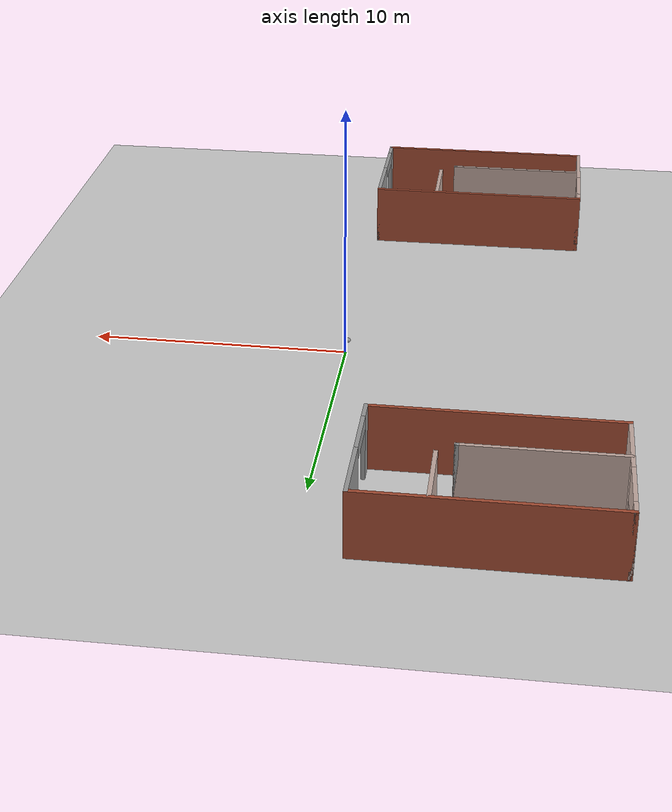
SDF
<sdf version="1.6">
 <world name="default">
  <plugin name="hello" filename="libmessage.so"/>
  <light name="sun" type="directional">
   <pose>0 0 10 0 -0 0</pose>
   <diffuse>0.8 0.8 0.8 1</diffuse>
   <specular>0.2 0.2 0.2 1</specular>
   <attenuation>
    <range>1000</range>
    <constant>0.9</constant>
    <linear>0.01</linear>
    <quadratic>0.001</quadratic>
   </attenuation>
   <direction>-0.5 0.1 -0.9</direction>
  </light>
  <model name="ground_plane">
   <static>1</static>
   <link name="link">
    <collision name="collision">
     <geometry><plane><normal>0 0 1</normal><size>100 100</size></plane></geometry>
     <surface>
      <contact><collide_bitmask>65535</collide_bitmask></contact>
      <friction><ode><mu>100</mu><mu2>50</mu2></ode></friction>
     </surface>
    </collision>
    <visual name="visual">
     <cast_shadows>0</cast_shadows>
     <geometry><plane><normal>0 0 1</normal><size>100 100</size></plane></geometry>
     <material>
      <script><uri>file://media/materials/scripts/gazebo.material</uri><name>Gazebo/Grey</name></script>
     </material>
    </visual>
   </link>
  </model>
  <gravity>0 0 -9.8</gravity>
  <magnetic_field>6e-06 2.3e-05 -4.2e-05</magnetic_field>
  <atmosphere type="adiabatic"/>
  <physics name="default_physics" default="0" type="ode">
   <max_step_size>0.001</max_step_size>
   <real_time_factor>1</real_time_factor>
   <real_time_update_rate>1000</real_time_update_rate>
  </physics>
  <scene><ambient>0.4 0.4 0.4 1</ambient><background>0.7 0.7 0.7 1</background><shadows>1</shadows></scene>
  <spherical_coordinates>
   <surface_model>EARTH_WGS84</surface_model>
   <latitude_deg>0</latitude_deg>
   <longitude_deg>0</longitude_deg>
   <elevation>0</elevation>
   <heading_deg>0</heading_deg>
  </spherical_coordinates>
  <model name="room2">
   <pose>-4.515 -13.785 0 0 -0 0</pose>
   <link name="Wall_21">
    <collision name="Wall_21_Collision">
     <geometry><box><size>9 0.15 2.5</size></box></geometry>
     <pose>0 0 1.25 0 -0 0</pose>
    </collision>
    <visual name="Wall_21_Visual">
     <pose>0 0 1.25 0 -0 0</pose>
     <geometry><box><size>9 0.15 2.5</size></box></geometry>
     <material>
      <script><uri>file://media/materials/scripts/gazebo.material</uri><name>Gazebo/Bricks</name></script>
      <ambient>1 1 1 1</ambient>
     </material>
     <meta><layer>0</layer></meta>
    </visual>
    <pose>0 2.675 0 0 -0 0</pose>
   </link>
   <link name="Wall_22">
    <pose>4.425 0 0 0 0 -1.5708</pose>
    <visual name="Wall_22_Visual_0">
     <pose>-1.4175 0 1.25 0 -0 0</pose>
     <geometry><box><size>2.665 0.15 2.5</size></box></geometry>
     <material>
      <script><uri>file://media/materials/scripts/gazebo.material</uri><name>Gazebo/Grey</name></script>
      <ambient>1 1 1 1</ambient>
     </material>
     <meta><layer>0</layer></meta>
    </visual>
    <collision name="Wall_22_Collision_0">
     <geometry><box><size>2.665 0.15 2.5</size></box></geometry>
     <pose>-1.4175 0 1.25 0 -0 0</pose>
    </collision>
    <visual name="Wall_22_Visual_1">
     <pose>2.3325 0 1.25 0 -0 0</pose>
     <geometry><box><size>0.835 0.15 2.5</size></box></geometry>
     <material>
      <script><uri>file://media/materials/scripts/gazebo.material</uri><name>Gazebo/Grey</name></script>
      <ambient>1 1 1 1</ambient>
     </material>
     <meta><layer>0</layer></meta>
    </visual>
    <collision name="Wall_22_Collision_1">
     <geometry><box><size>0.835 0.15 2.5</size></box></geometry>
     <pose>2.3325 0 1.25 0 -0 0</pose>
    </collision>
    <visual name="Wall_22_Visual_2">
     <pose>0.915 0 2.25 0 -0 0</pose>
     <geometry><box><size>2 0.15 0.5</size></box></geometry>
     <material>
      <script><uri>file://media/materials/scripts/gazebo.material</uri><name>Gazebo/Grey</name></script>
      <ambient>1 1 1 1</ambient>
     </material>
     <meta><layer>0</layer></meta>
    </visual>
    <collision name="Wall_22_Collision_2">
     <geometry><box><size>2 0.15 0.5</size></box></geometry>
     <pose>0.915 0 2.25 0 -0 0</pose>
    </collision>
   </link>
   <link name="Wall_23">
    <collision name="Wall_23_Collision">
     <geometry><box><size>9 0.15 2.5</size></box></geometry>
     <pose>0 0 1.25 0 -0 0</pose>
    </collision>
    <visual name="Wall_23_Visual">
     <pose>0 0 1.25 0 -0 0</pose>
     <geometry><box><size>9 0.15 2.5</size></box></geometry>
     <material>
      <script><uri>file://media/materials/scripts/gazebo.material</uri><name>Gazebo/Bricks</name></script>
      <ambient>1 1 1 1</ambient>
     </material>
     <meta><layer>0</layer></meta>
    </visual>
    <pose>0 -2.675 0 0 -0 3.14159</pose>
   </link>
   <link name="Wall_24">
    <pose>-4.425 0 0 0 -0 1.5708</pose>
    <visual name="Wall_24_Visual_0">
     <pose>-1.3225 0 1.25 0 -0 0</pose>
     <geometry><box><size>2.855 0.15 2.5</size></box></geometry>
     <material>
      <script><uri>file://media/materials/scripts/gazebo.material</uri><name>Gazebo/Grey</name></script>
      <ambient>0.760784 0.662745 0.627451 1</ambient>
     </material>
     <meta><layer>0</layer></meta>
    </visual>
    <collision name="Wall_24_Collision_0">
     <geometry><box><size>2.855 0.15 2.5</size></box></geometry>
     <pose>-1.3225 0 1.25 0 -0 0</pose>
    </collision>
    <visual name="Wall_24_Visual_1">
     <pose>1.4275 0 0.25 0 -0 0</pose>
     <geometry><box><size>2.645 0.15 0.5</size></box></geometry>
     <material>
      <script><uri>file://media/materials/scripts/gazebo.material</uri><name>Gazebo/Grey</name></script>
      <ambient>0.760784 0.662745 0.627451 1</ambient>
     </material>
     <meta><layer>0</layer></meta>
    </visual>
    <collision name="Wall_24_Collision_1">
     <geometry><box><size>2.645 0.15 0.5</size></box></geometry>
     <pose>1.4275 0 0.25 0 -0 0</pose>
    </collision>
    <visual name="Wall_24_Visual_2">
     <pose>2.4275 0 1.5 0 -0 0</pose>
     <geometry><box><size>0.645 0.15 2</size></box></geometry>
     <material>
      <script><uri>file://media/materials/scripts/gazebo.material</uri><name>Gazebo/Grey</name></script>
      <ambient>0.760784 0.662745 0.627451 1</ambient>
     </material>
     <meta><layer>0</layer></meta>
    </visual>
    <collision name="Wall_24_Collision_2">
     <geometry><box><size>0.645 0.15 2</size></box></geometry>
     <pose>2.4275 0 1.5 0 -0 0</pose>
    </collision>
    <visual name="Wall_24_Visual_3">
     <pose>1.105 0 1.9 0 -0 0</pose>
     <geometry><box><size>2 0.15 1.2</size></box></geometry>
     <material>
      <script><uri>file://media/materials/scripts/gazebo.material</uri><name>Gazebo/Grey</name></script>
      <ambient>0.760784 0.662745 0.627451 1</ambient>
     </material>
     <meta><layer>0</layer></meta>
    </visual>
    <collision name="Wall_24_Collision_3">
     <geometry><box><size>2 0.15 1.2</size></box></geometry>
     <pose>1.105 0 1.9 0 -0 0</pose>
    </collision>
   </link>
   <link name="Wall_26">
    <collision name="Wall_26_Collision">
     <geometry><box><size>2.75 0.15 2.5</size></box></geometry>
     <pose>0 0 1.25 0 -0 0</pose>
    </collision>
    <visual name="Wall_26_Visual">
     <pose>0 0 1.25 0 -0 0</pose>
     <geometry><box><size>2.75 0.15 2.5</size></box></geometry>
     <material>
      <script><uri>file://media/materials/scripts/gazebo.material</uri><name>Gazebo/Grey</name></script>
      <ambient>0.760784 0.662745 0.627451 1</ambient>
     </material>
     <meta><layer>0</layer></meta>
    </visual>
    <pose>1.855 1.305 0 0 0 -1.5708</pose>
   </link>
   <link name="Wall_28">
    <collision name="Wall_28_Collision">
     <geometry><box><size>5.75 0.15 2.5</size></box></geometry>
     <pose>0 0 1.25 0 -0 0</pose>
    </collision>
    <visual name="Wall_28_Visual">
     <pose>0 0 1.25 0 -0 0</pose>
     <geometry><box><size>5.75 0.15 2.5</size></box></geometry>
     <material>
      <script><uri>file://media/materials/scripts/gazebo.material</uri><name>Gazebo/Grey</name></script>
      <ambient>0.760784 0.662745 0.627451 1</ambient>
     </material>
     <meta><layer>0</layer></meta>
    </visual>
    <pose>-1.585 -0.545 0 0 -0 0</pose>
   </link>
   <link name="Wall_29">
    <collision name="Wall_29_Collision">
     <geometry><box><size>0.15 0.15 2.5</size></box></geometry>
     <pose>0 0 1.25 0 -0 0</pose>
    </collision>
    <visual name="Wall_29_Visual">
     <pose>0 0 1.25 0 -0 0</pose>
     <geometry><box><size>0.15 0.15 2.5</size></box></geometry>
     <material>
      <script><uri>file://media/materials/scripts/gazebo.material</uri><name>Gazebo/Grey</name></script>
      <ambient>1 1 1 1</ambient>
     </material>
     <meta><layer>0</layer></meta>
    </visual>
    <pose>1.215 -0.545 0 0 -0 0</pose>
   </link>
   <static>1</static>
  </model>
  <model name="room2_0">
   <pose>-6.20009 11.0329 0 0 -0 0</pose>
   <link name="Wall_21">
    <collision name="Wall_21_Collision">
     <geometry><box><size>9 0.15 2.5</size></box></geometry>
     <pose>0 0 1.25 0 -0 0</pose>
    </collision>
    <visual name="Wall_21_Visual">
     <pose>0 0 1.25 0 -0 0</pose>
     <geometry><box><size>9 0.15 2.5</size></box></geometry>
     <material>
      <script><uri>file://media/materials/scripts/gazebo.material</uri><name>Gazebo/Bricks</name></script>
      <ambient>1 1 1 1</ambient>
     </material>
     <meta><layer>0</layer></meta>
    </visual>
    <pose>0 2.675 0 0 -0 0</pose>
   </link>
   <link name="Wall_22">
    <pose>4.425 0 0 0 0 -1.5708</pose>
    <visual name="Wall_22_Visual_0">
     <pose>-1.4175 0 1.25 0 -0 0</pose>
     <geometry><box><size>2.665 0.15 2.5</size></box></geometry>
     <material>
      <script><uri>file://media/materials/scripts/gazebo.material</uri><name>Gazebo/Grey</name></script>
      <ambient>1 1 1 1</ambient>
     </material>
     <meta><layer>0</layer></meta>
    </visual>
    <collision name="Wall_22_Collision_0">
     <geometry><box><size>2.665 0.15 2.5</size></box></geometry>
     <pose>-1.4175 0 1.25 0 -0 0</pose>
    </collision>
    <visual name="Wall_22_Visual_1">
     <pose>2.3325 0 1.25 0 -0 0</pose>
     <geometry><box><size>0.835 0.15 2.5</size></box></geometry>
     <material>
      <script><uri>file://media/materials/scripts/gazebo.material</uri><name>Gazebo/Grey</name></script>
      <ambient>1 1 1 1</ambient>
     </material>
     <meta><layer>0</layer></meta>
    </visual>
    <collision name="Wall_22_Collision_1">
     <geometry><box><size>0.835 0.15 2.5</size></box></geometry>
     <pose>2.3325 0 1.25 0 -0 0</pose>
    </collision>
    <visual name="Wall_22_Visual_2">
     <pose>0.915 0 2.25 0 -0 0</pose>
     <geometry><box><size>2 0.15 0.5</size></box></geometry>
     <material>
      <script><uri>file://media/materials/scripts/gazebo.material</uri><name>Gazebo/Grey</name></script>
      <ambient>1 1 1 1</ambient>
     </material>
     <meta><layer>0</layer></meta>
    </visual>
    <collision name="Wall_22_Collision_2">
     <geometry><box><size>2 0.15 0.5</size></box></geometry>
     <pose>0.915 0 2.25 0 -0 0</pose>
    </collision>
   </link>
   <link name="Wall_23">
    <collision name="Wall_23_Collision">
     <geometry><box><size>9 0.15 2.5</size></box></geometry>
     <pose>0 0 1.25 0 -0 0</pose>
    </collision>
    <visual name="Wall_23_Visual">
     <pose>0 0 1.25 0 -0 0</pose>
     <geometry><box><size>9 0.15 2.5</size></box></geometry>
     <material>
      <script><uri>file://media/materials/scripts/gazebo.material</uri><name>Gazebo/Bricks</name></script>
      <ambient>1 1 1 1</ambient>
     </material>
     <meta><layer>0</layer></meta>
    </visual>
    <pose>0 -2.675 0 0 -0 3.14159</pose>
   </link>
   <link name="Wall_24">
    <pose>-4.425 0 0 0 -0 1.5708</pose>
    <visual name="Wall_24_Visual_0">
     <pose>-1.3225 0 1.25 0 -0 0</pose>
     <geometry><box><size>2.855 0.15 2.5</size></box></geometry>
     <material>
      <script><uri>file://media/materials/scripts/gazebo.material</uri><name>Gazebo/Grey</name></script>
      <ambient>0.760784 0.662745 0.627451 1</ambient>
     </material>
     <meta><layer>0</layer></meta>
    </visual>
    <collision name="Wall_24_Collision_0">
     <geometry><box><size>2.855 0.15 2.5</size></box></geometry>
     <pose>-1.3225 0 1.25 0 -0 0</pose>
    </collision>
    <visual name="Wall_24_Visual_1">
     <pose>1.4275 0 0.25 0 -0 0</pose>
     <geometry><box><size>2.645 0.15 0.5</size></box></geometry>
     <material>
      <script><uri>file://media/materials/scripts/gazebo.material</uri><name>Gazebo/Grey</name></script>
      <ambient>0.760784 0.662745 0.627451 1</ambient>
     </material>
     <meta><layer>0</layer></meta>
    </visual>
    <collision name="Wall_24_Collision_1">
     <geometry><box><size>2.645 0.15 0.5</size></box></geometry>
     <pose>1.4275 0 0.25 0 -0 0</pose>
    </collision>
    <visual name="Wall_24_Visual_2">
     <pose>2.4275 0 1.5 0 -0 0</pose>
     <geometry><box><size>0.645 0.15 2</size></box></geometry>
     <material>
      <script><uri>file://media/materials/scripts/gazebo.material</uri><name>Gazebo/Grey</name></script>
      <ambient>0.760784 0.662745 0.627451 1</ambient>
     </material>
     <meta><layer>0</layer></meta>
    </visual>
    <collision name="Wall_24_Collision_2">
     <geometry><box><size>0.645 0.15 2</size></box></geometry>
     <pose>2.4275 0 1.5 0 -0 0</pose>
    </collision>
    <visual name="Wall_24_Visual_3">
     <pose>1.105 0 1.9 0 -0 0</pose>
     <geometry><box><size>2 0.15 1.2</size></box></geometry>
     <material>
      <script><uri>file://media/materials/scripts/gazebo.material</uri><name>Gazebo/Grey</name></script>
      <ambient>0.760784 0.662745 0.627451 1</ambient>
     </material>
     <meta><layer>0</layer></meta>
    </visual>
    <collision name="Wall_24_Collision_3">
     <geometry><box><size>2 0.15 1.2</size></box></geometry>
     <pose>1.105 0 1.9 0 -0 0</pose>
    </collision>
   </link>
   <link name="Wall_26">
    <collision name="Wall_26_Collision">
     <geometry><box><size>2.75 0.15 2.5</size></box></geometry>
     <pose>0 0 1.25 0 -0 0</pose>
    </collision>
    <visual name="Wall_26_Visual">
     <pose>0 0 1.25 0 -0 0</pose>
     <geometry><box><size>2.75 0.15 2.5</size></box></geometry>
     <material>
      <script><uri>file://media/materials/scripts/gazebo.material</uri><name>Gazebo/Grey</name></script>
      <ambient>0.760784 0.662745 0.627451 1</ambient>
     </material>
     <meta><layer>0</layer></meta>
    </visual>
    <pose>1.855 1.305 0 0 0 -1.5708</pose>
   </link>
   <link name="Wall_28">
    <collision name="Wall_28_Collision">
     <geometry><box><size>5.75 0.15 2.5</size></box></geometry>
     <pose>0 0 1.25 0 -0 0</pose>
    </collision>
    <visual name="Wall_28_Visual">
     <pose>0 0 1.25 0 -0 0</pose>
     <geometry><box><size>5.75 0.15 2.5</size></box></geometry>
     <material>
      <script><uri>file://media/materials/scripts/gazebo.material</uri><name>Gazebo/Grey</name></script>
      <ambient>0.760784 0.662745 0.627451 1</ambient>
     </material>
     <meta><layer>0</layer></meta>
    </visual>
    <pose>-1.585 -0.545 0 0 -0 0</pose>
   </link>
   <link name="Wall_29">
    <collision name="Wall_29_Collision">
     <geometry><box><size>0.15 0.15 2.5</size></box></geometry>
     <pose>0 0 1.25 0 -0 0</pose>
    </collision>
    <visual name="Wall_29_Visual">
     <pose>0 0 1.25 0 -0 0</pose>
     <geometry><box><size>0.15 0.15 2.5</size></box></geometry>
     <material>
      <script><uri>file://media/materials/scripts/gazebo.material</uri><name>Gazebo/Grey</name></script>
      <ambient>1 1 1 1</ambient>
     </material>
     <meta><layer>0</layer></meta>
    </visual>
    <pose>1.215 -0.545 0 0 -0 0</pose>
   </link>
   <static>1</static>
  </model>
  <model name="bookshelf">
   <static>1</static>
   <link name="link">
    <inertial><mass>1</mass></inertial>
    <collision name="back">
     <pose>0 0.005 0.6 0 -0 0</pose>
     <geometry><box><size>0.9 0.01 1.2</size></box></geometry>
    </collision>
    <visual name="visual1">
     <pose>0 0.005 0.6 0 -0 0</pose>
     <geometry><box><size>0.9 0.01 1.2</size></box></geometry>
     <material>
      <script><uri>file://media/materials/scripts/gazebo.material</uri><name>Gazebo/Wood</name></script>
     </material>
    </visual>
    <collision name="left_side">
     <pose>0.45 -0.195 0.6 0 -0 0</pose>
     <geometry><box><size>0.02 0.4 1.2</size></box></geometry>
    </collision>
    <visual name="visual2">
     <pose>0.45 -0.195 0.6 0 -0 0</pose>
     <geometry><box><size>0.02 0.4 1.2</size></box></geometry>
     <material>
      <script><uri>file://media/materials/scripts/gazebo.material</uri><name>Gazebo/Wood</name></script>
     </material>
    </visual>
    <collision name="right_side">
     <pose>-0.45 -0.195 0.6 0 -0 0</pose>
     <geometry><box><size>0.02 0.4 1.2</size></box></geometry>
    </collision>
    <visual name="visual3">
     <pose>-0.45 -0.195 0.6 0 -0 0</pose>
     <geometry><box><size>0.02 0.4 1.2</size></box></geometry>
     <material>
      <script><uri>file://media/materials/scripts/gazebo.material</uri><name>Gazebo/Wood</name></script>
     </material>
    </visual>
    <collision name="bottom">
     <pose>0 -0.195 0.03 0 -0 0</pose>
     <geometry><box><size>0.88 0.4 0.06</size></box></geometry>
    </collision>
    <visual name="visual4">
     <pose>0 -0.195 0.03 0 -0 0</pose>
     <geometry><box><size>0.88 0.4 0.06</size></box></geometry>
     <material>
      <script><uri>file://media/materials/scripts/gazebo.material</uri><name>Gazebo/Wood</name></script>
     </material>
    </visual>
    <collision name="top">
     <pose>0 -0.195 1.19 0 -0 0</pose>
     <geometry><box><size>0.88 0.4 0.02</size></box></geometry>
    </collision>
    <visual name="visual5">
     <pose>0 -0.195 1.19 0 -0 0</pose>
     <geometry><box><size>0.88 0.4 0.02</size></box></geometry>
     <material>
      <script><uri>file://media/materials/scripts/gazebo.material</uri><name>Gazebo/Wood</name></script>
     </material>
    </visual>
    <collision name="low_shelf">
     <pose>0 -0.195 0.43 0 -0 0</pose>
     <geometry><box><size>0.88 0.4 0.02</size></box></geometry>
    </collision>
    <visual name="visual6">
     <pose>0 -0.195 0.43 0 -0 0</pose>
     <geometry><box><size>0.88 0.4 0.02</size></box></geometry>
     <material>
      <script><uri>file://media/materials/scripts/gazebo.material</uri><name>Gazebo/Wood</name></script>
     </material>
    </visual>
    <collision name="high_shelf">
     <pose>0 -0.195 0.8 0 -0 0</pose>
     <geometry><box><size>0.88 0.4 0.02</size></box></geometry>
    </collision>
    <visual name="visual7">
     <pose>0 -0.195 0.8 0 -0 0</pose>
     <geometry><box><size>0.88 0.4 0.02</size></box></geometry>
     <material>
      <script><uri>file://media/materials/scripts/gazebo.material</uri><name>Gazebo/Wood</name></script>
     </material>
    </visual>
   </link>
   <pose>-8.64302 13.2248 0 0 -0 0</pose>
  </model>
  <model name="my_ball">
   <link name="link_0">
    <inertial>
     <mass>1</mass>
     <inertia><ixx>0.1</ixx><ixy>0</ixy><ixz>0</ixz><iyy>0.1</iyy><iyz>0</iyz><izz>0.1</izz></inertia>
    </inertial>
    <visual name="visual">
     <geometry><sphere><radius>0.1</radius></sphere></geometry>
     <material>
      <lighting>1</lighting>
      <script><uri>file://media/materials/scripts/gazebo.material</uri><name>Gazebo/Grey</name></script>
      <shader type="pixel"><normal_map>__default__</normal_map></shader>
      <ambient>1 1 1 1</ambient>
      <diffuse>1 1 1 1</diffuse>
      <specular>1 1 1 1</specular>
      <emissive>1 1 1 1</emissive>
     </material>
    </visual>
    <collision name="collision">
     <geometry><sphere><radius>0.1</radius></sphere></geometry>
     <surface>
      <friction>
       <ode><mu>1</mu><mu2>1</mu2><fdir1>0 0 0</fdir1><slip1>0</slip1><slip2>0</slip2></ode>
       <torsional>
        <coefficient>1</coefficient>
        <patch_radius>0</patch_radius>
        <surface_radius>0</surface_radius>
        <use_patch_radius>1</use_patch_radius>
        <ode><slip>0</slip></ode>
       </torsional>
      </friction>
      <bounce><restitution_coefficient>0</restitution_coefficient><threshold>1e+06</threshold></bounce>
      <contact>
       <collide_without_contact>0</collide_without_contact>
       <collide_without_contact_bitmask>1</collide_without_contact_bitmask>
       <collide_bitmask>1</collide_bitmask>
       <ode>
        <soft_cfm>0</soft_cfm>
        <soft_erp>0.2</soft_erp>
        <kp>1e+13</kp>
        <kd>1</kd>
        <max_vel>0.01</max_vel>
        <min_depth>0</min_depth>
       </ode>
       <bullet>
        <split_impulse>1</split_impulse>
        <split_impulse_penetration_threshold>-0.01</split_impulse_penetration_threshold>
        <soft_cfm>0</soft_cfm>
        <soft_erp>0.2</soft_erp>
        <kp>1e+13</kp>
        <kd>1</kd>
       </bullet>
      </contact>
     </surface>
    </collision>
   </link>
   <static>0</static>
   <pose>-0.087703 -0.085847 0.5 0 -0 0</pose>
  </model>
  <model name="my_ball_0">
   <link name="link_0">
    <inertial>
     <mass>1</mass>
     <inertia><ixx>0.1</ixx><ixy>0</ixy><ixz>0</ixz><iyy>0.1</iyy><iyz>0</iyz><izz>0.1</izz></inertia>
    </inertial>
    <visual name="visual">
     <geometry><sphere><radius>0.1</radius></sphere></geometry>
     <material>
      <lighting>1</lighting>
      <script><uri>file://media/materials/scripts/gazebo.material</uri><name>Gazebo/Grey</name></script>
      <shader type="pixel"><normal_map>__default__</normal_map></shader>
      <ambient>1 1 1 1</ambient>
      <diffuse>1 1 1 1</diffuse>
      <specular>1 1 1 1</specular>
      <emissive>1 1 1 1</emissive>
     </material>
    </visual>
    <collision name="collision">
     <geometry><sphere><radius>0.1</radius></sphere></geometry>
     <surface>
      <friction>
       <ode><mu>1</mu><mu2>1</mu2><fdir1>0 0 0</fdir1><slip1>0</slip1><slip2>0</slip2></ode>
       <torsional>
        <coefficient>1</coefficient>
        <patch_radius>0</patch_radius>
        <surface_radius>0</surface_radius>
        <use_patch_radius>1</use_patch_radius>
        <ode><slip>0</slip></ode>
       </torsional>
      </friction>
      <bounce><restitution_coefficient>0</restitution_coefficient><threshold>1e+06</threshold></bounce>
      <contact>
       <collide_without_contact>0</collide_without_contact>
       <collide_without_contact_bitmask>1</collide_without_contact_bitmask>
       <collide_bitmask>1</collide_bitmask>
       <ode>
        <soft_cfm>0</soft_cfm>
        <soft_erp>0.2</soft_erp>
        <kp>1e+13</kp>
        <kd>1</kd>
        <max_vel>0.01</max_vel>
        <min_depth>0</min_depth>
       </ode>
       <bullet>
        <split_impulse>1</split_impulse>
        <split_impulse_penetration_threshold>-0.01</split_impulse_penetration_threshold>
        <soft_cfm>0</soft_cfm>
        <soft_erp>0.2</soft_erp>
        <kp>1e+13</kp>
        <kd>1</kd>
       </bullet>
      </contact>
     </surface>
    </collision>
   </link>
   <static>0</static>
   <pose>-2.78003 12.8181 0 0 -0 0</pose>
  </model>
 </world>
</sdf>
